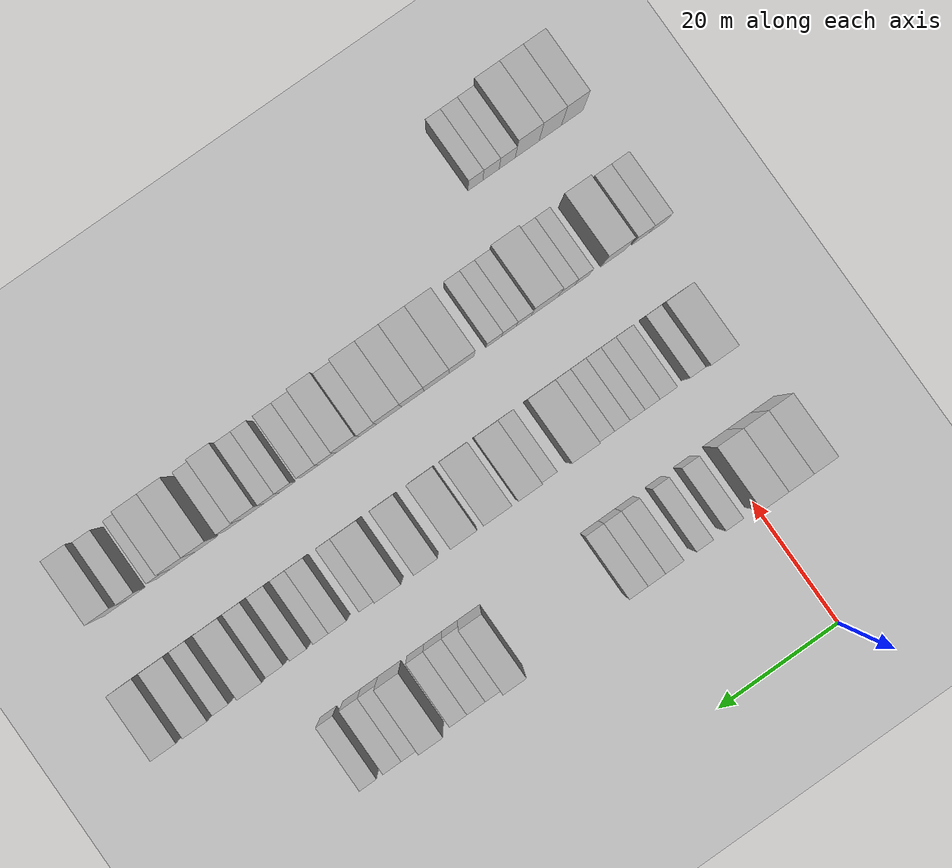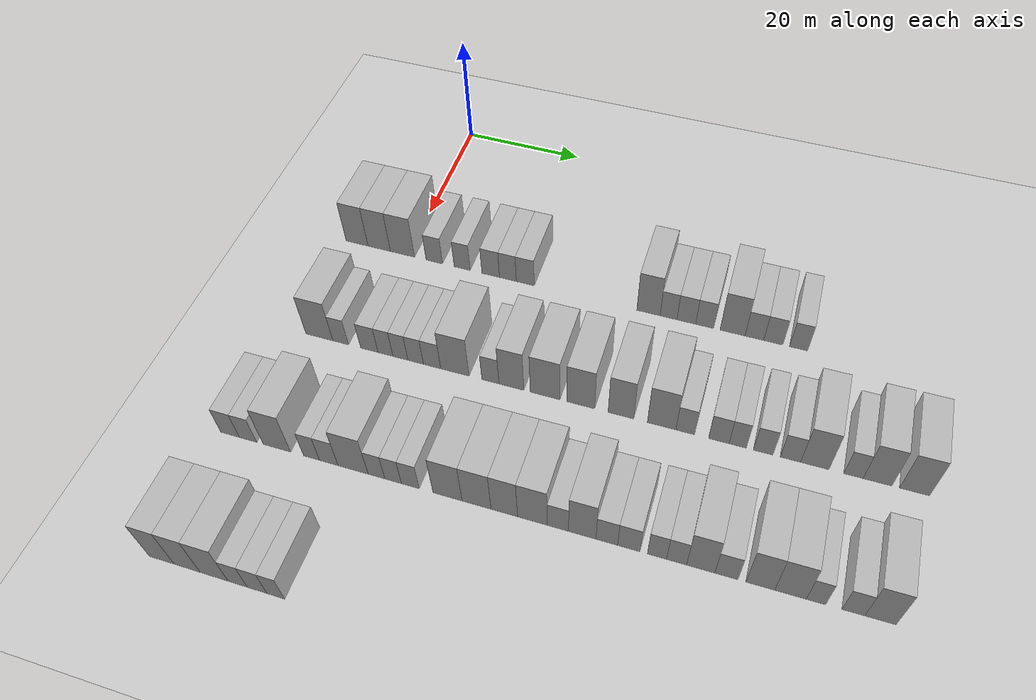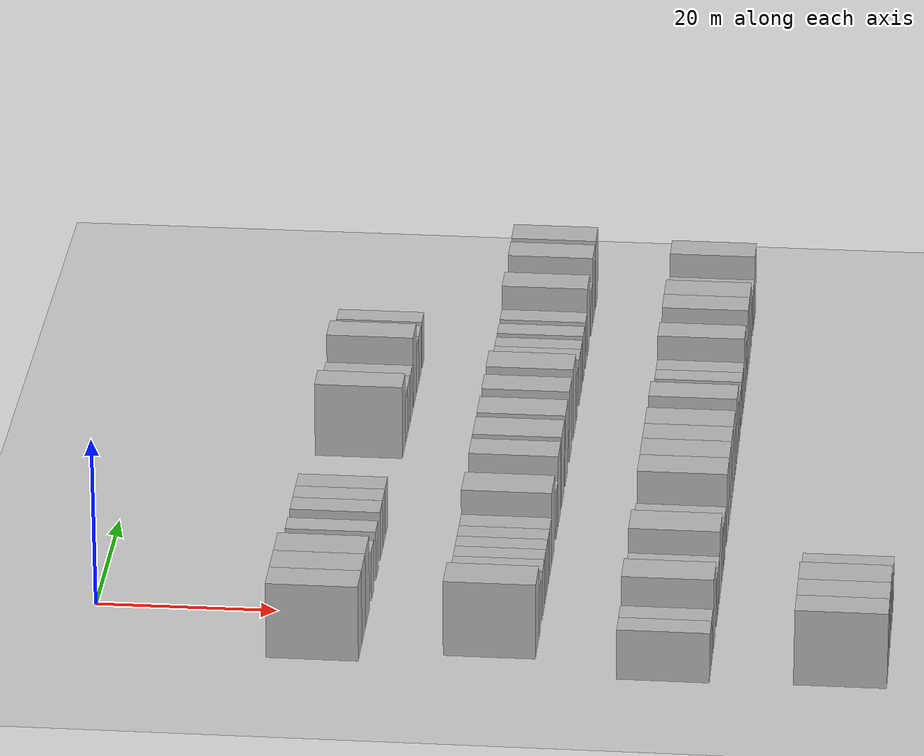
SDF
<sdf version="1.6">
 <world name="default">
  <include><name>ground_plane_1</name><uri>model://HANNAS_ground_plane</uri></include>
  <model name="building_80">
   <static>1</static>
   <pose>25.0000 -8.8628 0 0.000000 0.000000 0.000000</pose>
   <link name="link">
    <pose>0 0 4.50 0 0 0</pose>
    <collision name="collision"><geometry><box><size>10.0000 3.8810 9.0000</size></box></geometry></collision>
    <visual name="visual">
     <cast_shadows>0</cast_shadows>
     <geometry><box><size>10.0000 3.8810 9.0000</size></box></geometry>
     <material>
      <script>
       <uri>model://HANNAS_wall/materials/scripts</uri>
       <uri>model://HANNAS_wall/materials/textures</uri>
       <name>vrc/HANNAS_wall</name>
      </script>
     </material>
    </visual>
   </link>
  </model>
  <model name="building_81">
   <static>1</static>
   <pose>25.0000 -4.9381 0 0.000000 0.000000 0.000000</pose>
   <link name="link">
    <pose>0 0 4.50 0 0 0</pose>
    <collision name="collision"><geometry><box><size>10.0000 3.9684 9.0000</size></box></geometry></collision>
    <visual name="visual">
     <cast_shadows>0</cast_shadows>
     <geometry><box><size>10.0000 3.9684 9.0000</size></box></geometry>
     <material>
      <script>
       <uri>model://HANNAS_wall/materials/scripts</uri>
       <uri>model://HANNAS_wall/materials/textures</uri>
       <name>vrc/HANNAS_wall</name>
      </script>
     </material>
    </visual>
   </link>
  </model>
  <model name="building_82">
   <static>1</static>
   <pose>25.0000 -0.8467 0 0.000000 0.000000 0.000000</pose>
   <link name="link">
    <pose>0 0 4.50 0 0 0</pose>
    <collision name="collision"><geometry><box><size>10.0000 4.2144 9.0000</size></box></geometry></collision>
    <visual name="visual">
     <cast_shadows>0</cast_shadows>
     <geometry><box><size>10.0000 4.2144 9.0000</size></box></geometry>
     <material>
      <script>
       <uri>model://HANNAS_wall/materials/scripts</uri>
       <uri>model://HANNAS_wall/materials/textures</uri>
       <name>vrc/HANNAS_wall</name>
      </script>
     </material>
    </visual>
   </link>
  </model>
  <model name="building_83">
   <static>1</static>
   <pose>25.0000 4.6830 0 0.000000 0.000000 0.000000</pose>
   <link name="link">
    <pose>0 0 3.00 0 0 0</pose>
    <collision name="collision"><geometry><box><size>10.0000 2.8449 6.0000</size></box></geometry></collision>
    <visual name="visual">
     <cast_shadows>0</cast_shadows>
     <geometry><box><size>10.0000 2.8449 6.0000</size></box></geometry>
     <material>
      <script>
       <uri>model://HANNAS_wall/materials/scripts</uri>
       <uri>model://HANNAS_wall/materials/textures</uri>
       <name>vrc/HANNAS_wall</name>
      </script>
     </material>
    </visual>
   </link>
  </model>
  <model name="building_84">
   <static>1</static>
   <pose>25.0000 9.4746 0 0.000000 0.000000 0.000000</pose>
   <link name="link">
    <pose>0 0 3.00 0 0 0</pose>
    <collision name="collision"><geometry><box><size>10.0000 2.7384 6.0000</size></box></geometry></collision>
    <visual name="visual">
     <cast_shadows>0</cast_shadows>
     <geometry><box><size>10.0000 2.7384 6.0000</size></box></geometry>
     <material>
      <script>
       <uri>model://HANNAS_wall/materials/scripts</uri>
       <uri>model://HANNAS_wall/materials/textures</uri>
       <name>vrc/HANNAS_wall</name>
      </script>
     </material>
    </visual>
   </link>
  </model>
  <model name="building_85">
   <static>1</static>
   <pose>25.0000 14.3196 0 0.000000 0.000000 0.000000</pose>
   <link name="link">
    <pose>0 0 3.00 0 0 0</pose>
    <collision name="collision"><geometry><box><size>10.0000 2.9516 6.0000</size></box></geometry></collision>
    <visual name="visual">
     <cast_shadows>0</cast_shadows>
     <geometry><box><size>10.0000 2.9516 6.0000</size></box></geometry>
     <material>
      <script>
       <uri>model://HANNAS_wall/materials/scripts</uri>
       <uri>model://HANNAS_wall/materials/textures</uri>
       <name>vrc/HANNAS_wall</name>
      </script>
     </material>
    </visual>
   </link>
  </model>
  <model name="building_86">
   <static>1</static>
   <pose>25.0000 17.2045 0 0.000000 0.000000 0.000000</pose>
   <link name="link">
    <pose>0 0 3.00 0 0 0</pose>
    <collision name="collision"><geometry><box><size>10.0000 2.8181 6.0000</size></box></geometry></collision>
    <visual name="visual">
     <cast_shadows>0</cast_shadows>
     <geometry><box><size>10.0000 2.8181 6.0000</size></box></geometry>
     <material>
      <script>
       <uri>model://HANNAS_wall/materials/scripts</uri>
       <uri>model://HANNAS_wall/materials/textures</uri>
       <name>vrc/HANNAS_wall</name>
      </script>
     </material>
    </visual>
   </link>
  </model>
  <model name="building_87">
   <static>1</static>
   <pose>25.0000 20.1125 0 0.000000 0.000000 0.000000</pose>
   <link name="link">
    <pose>0 0 3.00 0 0 0</pose>
    <collision name="collision"><geometry><box><size>10.0000 2.9980 6.0000</size></box></geometry></collision>
    <visual name="visual">
     <cast_shadows>0</cast_shadows>
     <geometry><box><size>10.0000 2.9980 6.0000</size></box></geometry>
     <material>
      <script>
       <uri>model://HANNAS_wall/materials/scripts</uri>
       <uri>model://HANNAS_wall/materials/textures</uri>
       <name>vrc/HANNAS_wall</name>
      </script>
     </material>
    </visual>
   </link>
  </model>
  <model name="building_88">
   <static>1</static>
   <pose>25.0000 40.1347 0 0.000000 0.000000 0.000000</pose>
   <link name="link">
    <pose>0 0 4.50 0 0 0</pose>
    <collision name="collision"><geometry><box><size>10.0000 3.6821 9.0000</size></box></geometry></collision>
    <visual name="visual">
     <cast_shadows>0</cast_shadows>
     <geometry><box><size>10.0000 3.6821 9.0000</size></box></geometry>
     <material>
      <script>
       <uri>model://HANNAS_wall/materials/scripts</uri>
       <uri>model://HANNAS_wall/materials/textures</uri>
       <name>vrc/HANNAS_wall</name>
      </script>
     </material>
    </visual>
   </link>
  </model>
  <model name="building_89">
   <static>1</static>
   <pose>25.0000 43.3047 0 0.000000 0.000000 0.000000</pose>
   <link name="link">
    <pose>0 0 3.00 0 0 0</pose>
    <collision name="collision"><geometry><box><size>10.0000 2.6580 6.0000</size></box></geometry></collision>
    <visual name="visual">
     <cast_shadows>0</cast_shadows>
     <geometry><box><size>10.0000 2.6580 6.0000</size></box></geometry>
     <material>
      <script>
       <uri>model://HANNAS_wall/materials/scripts</uri>
       <uri>model://HANNAS_wall/materials/textures</uri>
       <name>vrc/HANNAS_wall</name>
      </script>
     </material>
    </visual>
   </link>
  </model>
  <model name="building_90">
   <static>1</static>
   <pose>25.0000 46.0963 0 0.000000 0.000000 0.000000</pose>
   <link name="link">
    <pose>0 0 3.00 0 0 0</pose>
    <collision name="collision"><geometry><box><size>10.0000 2.9250 6.0000</size></box></geometry></collision>
    <visual name="visual">
     <cast_shadows>0</cast_shadows>
     <geometry><box><size>10.0000 2.9250 6.0000</size></box></geometry>
     <material>
      <script>
       <uri>model://HANNAS_wall/materials/scripts</uri>
       <uri>model://HANNAS_wall/materials/textures</uri>
       <name>vrc/HANNAS_wall</name>
      </script>
     </material>
    </visual>
   </link>
  </model>
  <model name="building_91">
   <static>1</static>
   <pose>25.0000 48.9484 0 0.000000 0.000000 0.000000</pose>
   <link name="link">
    <pose>0 0 3.00 0 0 0</pose>
    <collision name="collision"><geometry><box><size>10.0000 2.7791 6.0000</size></box></geometry></collision>
    <visual name="visual">
     <cast_shadows>0</cast_shadows>
     <geometry><box><size>10.0000 2.7791 6.0000</size></box></geometry>
     <material>
      <script>
       <uri>model://HANNAS_wall/materials/scripts</uri>
       <uri>model://HANNAS_wall/materials/textures</uri>
       <name>vrc/HANNAS_wall</name>
      </script>
     </material>
    </visual>
   </link>
  </model>
  <model name="building_92">
   <static>1</static>
   <pose>25.0000 53.2542 0 0.000000 0.000000 0.000000</pose>
   <link name="link">
    <pose>0 0 4.50 0 0 0</pose>
    <collision name="collision"><geometry><box><size>10.0000 3.8325 9.0000</size></box></geometry></collision>
    <visual name="visual">
     <cast_shadows>0</cast_shadows>
     <geometry><box><size>10.0000 3.8325 9.0000</size></box></geometry>
     <material>
      <script>
       <uri>model://HANNAS_wall/materials/scripts</uri>
       <uri>model://HANNAS_wall/materials/textures</uri>
       <name>vrc/HANNAS_wall</name>
      </script>
     </material>
    </visual>
   </link>
  </model>
  <model name="building_93">
   <static>1</static>
   <pose>25.0000 56.5913 0 0.000000 0.000000 0.000000</pose>
   <link name="link">
    <pose>0 0 3.00 0 0 0</pose>
    <collision name="collision"><geometry><box><size>10.0000 2.8417 6.0000</size></box></geometry></collision>
    <visual name="visual">
     <cast_shadows>0</cast_shadows>
     <geometry><box><size>10.0000 2.8417 6.0000</size></box></geometry>
     <material>
      <script>
       <uri>model://HANNAS_wall/materials/scripts</uri>
       <uri>model://HANNAS_wall/materials/textures</uri>
       <name>vrc/HANNAS_wall</name>
      </script>
     </material>
    </visual>
   </link>
  </model>
  <model name="building_94">
   <static>1</static>
   <pose>25.0000 59.4693 0 0.000000 0.000000 0.000000</pose>
   <link name="link">
    <pose>0 0 3.00 0 0 0</pose>
    <collision name="collision"><geometry><box><size>10.0000 2.9143 6.0000</size></box></geometry></collision>
    <visual name="visual">
     <cast_shadows>0</cast_shadows>
     <geometry><box><size>10.0000 2.9143 6.0000</size></box></geometry>
     <material>
      <script>
       <uri>model://HANNAS_wall/materials/scripts</uri>
       <uri>model://HANNAS_wall/materials/textures</uri>
       <name>vrc/HANNAS_wall</name>
      </script>
     </material>
    </visual>
   </link>
  </model>
  <model name="building_95">
   <static>1</static>
   <pose>25.0000 63.2848 0 0.000000 0.000000 0.000000</pose>
   <link name="link">
    <pose>0 0 3.00 0 0 0</pose>
    <collision name="collision"><geometry><box><size>10.0000 2.7167 6.0000</size></box></geometry></collision>
    <visual name="visual">
     <cast_shadows>0</cast_shadows>
     <geometry><box><size>10.0000 2.7167 6.0000</size></box></geometry>
     <material>
      <script>
       <uri>model://HANNAS_wall/materials/scripts</uri>
       <uri>model://HANNAS_wall/materials/textures</uri>
       <name>vrc/HANNAS_wall</name>
      </script>
     </material>
    </visual>
   </link>
  </model>
  <model name="building_240">
   <static>1</static>
   <pose>44.0000 -6.4663 0 0.000000 0.000000 0.000000</pose>
   <link name="link">
    <pose>0 0 4.50 0 0 0</pose>
    <collision name="collision"><geometry><box><size>10.0000 4.4723 9.0000</size></box></geometry></collision>
    <visual name="visual">
     <cast_shadows>0</cast_shadows>
     <geometry><box><size>10.0000 4.4723 9.0000</size></box></geometry>
     <material>
      <script>
       <uri>model://HANNAS_wall/materials/scripts</uri>
       <uri>model://HANNAS_wall/materials/textures</uri>
       <name>vrc/HANNAS_wall</name>
      </script>
     </material>
    </visual>
   </link>
  </model>
  <model name="building_241">
   <static>1</static>
   <pose>44.0000 -2.9451 0 0.000000 0.000000 0.000000</pose>
   <link name="link">
    <pose>0 0 3.00 0 0 0</pose>
    <collision name="collision"><geometry><box><size>10.0000 2.5700 6.0000</size></box></geometry></collision>
    <visual name="visual">
     <cast_shadows>0</cast_shadows>
     <geometry><box><size>10.0000 2.5700 6.0000</size></box></geometry>
     <material>
      <script>
       <uri>model://HANNAS_wall/materials/scripts</uri>
       <uri>model://HANNAS_wall/materials/textures</uri>
       <name>vrc/HANNAS_wall</name>
      </script>
     </material>
    </visual>
   </link>
  </model>
  <model name="building_242">
   <static>1</static>
   <pose>44.0000 1.7501 0 0.000000 0.000000 0.000000</pose>
   <link name="link">
    <pose>0 0 3.00 0 0 0</pose>
    <collision name="collision"><geometry><box><size>10.0000 2.8204 6.0000</size></box></geometry></collision>
    <visual name="visual">
     <cast_shadows>0</cast_shadows>
     <geometry><box><size>10.0000 2.8204 6.0000</size></box></geometry>
     <material>
      <script>
       <uri>model://HANNAS_wall/materials/scripts</uri>
       <uri>model://HANNAS_wall/materials/textures</uri>
       <name>vrc/HANNAS_wall</name>
      </script>
     </material>
    </visual>
   </link>
  </model>
  <model name="building_243">
   <static>1</static>
   <pose>44.0000 4.3625 0 0.000000 0.000000 0.000000</pose>
   <link name="link">
    <pose>0 0 3.00 0 0 0</pose>
    <collision name="collision"><geometry><box><size>10.0000 2.4045 6.0000</size></box></geometry></collision>
    <visual name="visual">
     <cast_shadows>0</cast_shadows>
     <geometry><box><size>10.0000 2.4045 6.0000</size></box></geometry>
     <material>
      <script>
       <uri>model://HANNAS_wall/materials/scripts</uri>
       <uri>model://HANNAS_wall/materials/textures</uri>
       <name>vrc/HANNAS_wall</name>
      </script>
     </material>
    </visual>
   </link>
  </model>
  <model name="building_244">
   <static>1</static>
   <pose>44.0000 6.7687 0 0.000000 0.000000 0.000000</pose>
   <link name="link">
    <pose>0 0 3.00 0 0 0</pose>
    <collision name="collision"><geometry><box><size>10.0000 2.4079 6.0000</size></box></geometry></collision>
    <visual name="visual">
     <cast_shadows>0</cast_shadows>
     <geometry><box><size>10.0000 2.4079 6.0000</size></box></geometry>
     <material>
      <script>
       <uri>model://HANNAS_wall/materials/scripts</uri>
       <uri>model://HANNAS_wall/materials/textures</uri>
       <name>vrc/HANNAS_wall</name>
      </script>
     </material>
    </visual>
   </link>
  </model>
  <model name="building_245">
   <static>1</static>
   <pose>44.0000 9.2122 0 0.000000 0.000000 0.000000</pose>
   <link name="link">
    <pose>0 0 3.00 0 0 0</pose>
    <collision name="collision"><geometry><box><size>10.0000 2.4792 6.0000</size></box></geometry></collision>
    <visual name="visual">
     <cast_shadows>0</cast_shadows>
     <geometry><box><size>10.0000 2.4792 6.0000</size></box></geometry>
     <material>
      <script>
       <uri>model://HANNAS_wall/materials/scripts</uri>
       <uri>model://HANNAS_wall/materials/textures</uri>
       <name>vrc/HANNAS_wall</name>
      </script>
     </material>
    </visual>
   </link>
  </model>
  <model name="building_246">
   <static>1</static>
   <pose>44.0000 11.8305 0 0.000000 0.000000 0.000000</pose>
   <link name="link">
    <pose>0 0 3.00 0 0 0</pose>
    <collision name="collision"><geometry><box><size>10.0000 2.7574 6.0000</size></box></geometry></collision>
    <visual name="visual">
     <cast_shadows>0</cast_shadows>
     <geometry><box><size>10.0000 2.7574 6.0000</size></box></geometry>
     <material>
      <script>
       <uri>model://HANNAS_wall/materials/scripts</uri>
       <uri>model://HANNAS_wall/materials/textures</uri>
       <name>vrc/HANNAS_wall</name>
      </script>
     </material>
    </visual>
   </link>
  </model>
  <model name="building_247">
   <static>1</static>
   <pose>44.0000 15.4380 0 0.000000 0.000000 0.000000</pose>
   <link name="link">
    <pose>0 0 4.50 0 0 0</pose>
    <collision name="collision"><geometry><box><size>10.0000 4.4575 9.0000</size></box></geometry></collision>
    <visual name="visual">
     <cast_shadows>0</cast_shadows>
     <geometry><box><size>10.0000 4.4575 9.0000</size></box></geometry>
     <material>
      <script>
       <uri>model://HANNAS_wall/materials/scripts</uri>
       <uri>model://HANNAS_wall/materials/textures</uri>
       <name>vrc/HANNAS_wall</name>
      </script>
     </material>
    </visual>
   </link>
  </model>
  <model name="building_248">
   <static>1</static>
   <pose>44.0000 20.9853 0 0.000000 0.000000 0.000000</pose>
   <link name="link">
    <pose>0 0 3.00 0 0 0</pose>
    <collision name="collision"><geometry><box><size>10.0000 2.6373 6.0000</size></box></geometry></collision>
    <visual name="visual">
     <cast_shadows>0</cast_shadows>
     <geometry><box><size>10.0000 2.6373 6.0000</size></box></geometry>
     <material>
      <script>
       <uri>model://HANNAS_wall/materials/scripts</uri>
       <uri>model://HANNAS_wall/materials/textures</uri>
       <name>vrc/HANNAS_wall</name>
      </script>
     </material>
    </visual>
   </link>
  </model>
  <model name="building_249">
   <static>1</static>
   <pose>44.0000 24.2152 0 0.000000 0.000000 0.000000</pose>
   <link name="link">
    <pose>0 0 4.50 0 0 0</pose>
    <collision name="collision"><geometry><box><size>10.0000 3.8224 9.0000</size></box></geometry></collision>
    <visual name="visual">
     <cast_shadows>0</cast_shadows>
     <geometry><box><size>10.0000 3.8224 9.0000</size></box></geometry>
     <material>
      <script>
       <uri>model://HANNAS_wall/materials/scripts</uri>
       <uri>model://HANNAS_wall/materials/textures</uri>
       <name>vrc/HANNAS_wall</name>
      </script>
     </material>
    </visual>
   </link>
  </model>
  <model name="building_250">
   <static>1</static>
   <pose>44.0000 29.3676 0 0.000000 0.000000 0.000000</pose>
   <link name="link">
    <pose>0 0 4.50 0 0 0</pose>
    <collision name="collision"><geometry><box><size>10.0000 4.4823 9.0000</size></box></geometry></collision>
    <visual name="visual">
     <cast_shadows>0</cast_shadows>
     <geometry><box><size>10.0000 4.4823 9.0000</size></box></geometry>
     <material>
      <script>
       <uri>model://HANNAS_wall/materials/scripts</uri>
       <uri>model://HANNAS_wall/materials/textures</uri>
       <name>vrc/HANNAS_wall</name>
      </script>
     </material>
    </visual>
   </link>
  </model>
  <model name="building_251">
   <static>1</static>
   <pose>44.0000 34.7093 0 0.000000 0.000000 0.000000</pose>
   <link name="link">
    <pose>0 0 4.50 0 0 0</pose>
    <collision name="collision"><geometry><box><size>10.0000 4.2011 9.0000</size></box></geometry></collision>
    <visual name="visual">
     <cast_shadows>0</cast_shadows>
     <geometry><box><size>10.0000 4.2011 9.0000</size></box></geometry>
     <material>
      <script>
       <uri>model://HANNAS_wall/materials/scripts</uri>
       <uri>model://HANNAS_wall/materials/textures</uri>
       <name>vrc/HANNAS_wall</name>
      </script>
     </material>
    </visual>
   </link>
  </model>
  <model name="building_252">
   <static>1</static>
   <pose>44.0000 40.6884 0 0.000000 0.000000 0.000000</pose>
   <link name="link">
    <pose>0 0 4.50 0 0 0</pose>
    <collision name="collision"><geometry><box><size>10.0000 3.7571 9.0000</size></box></geometry></collision>
    <visual name="visual">
     <cast_shadows>0</cast_shadows>
     <geometry><box><size>10.0000 3.7571 9.0000</size></box></geometry>
     <material>
      <script>
       <uri>model://HANNAS_wall/materials/scripts</uri>
       <uri>model://HANNAS_wall/materials/textures</uri>
       <name>vrc/HANNAS_wall</name>
      </script>
     </material>
    </visual>
   </link>
  </model>
  <model name="building_253">
   <static>1</static>
   <pose>44.0000 46.6342 0 0.000000 0.000000 0.000000</pose>
   <link name="link">
    <pose>0 0 4.50 0 0 0</pose>
    <collision name="collision"><geometry><box><size>10.0000 4.1346 9.0000</size></box></geometry></collision>
    <visual name="visual">
     <cast_shadows>0</cast_shadows>
     <geometry><box><size>10.0000 4.1346 9.0000</size></box></geometry>
     <material>
      <script>
       <uri>model://HANNAS_wall/materials/scripts</uri>
       <uri>model://HANNAS_wall/materials/textures</uri>
       <name>vrc/HANNAS_wall</name>
      </script>
     </material>
    </visual>
   </link>
  </model>
  <model name="building_254">
   <static>1</static>
   <pose>44.0000 50.0399 0 0.000000 0.000000 0.000000</pose>
   <link name="link">
    <pose>0 0 3.00 0 0 0</pose>
    <collision name="collision"><geometry><box><size>10.0000 2.6768 6.0000</size></box></geometry></collision>
    <visual name="visual">
     <cast_shadows>0</cast_shadows>
     <geometry><box><size>10.0000 2.6768 6.0000</size></box></geometry>
     <material>
      <script>
       <uri>model://HANNAS_wall/materials/scripts</uri>
       <uri>model://HANNAS_wall/materials/textures</uri>
       <name>vrc/HANNAS_wall</name>
      </script>
     </material>
    </visual>
   </link>
  </model>
  <model name="building_255">
   <static>1</static>
   <pose>44.0000 54.8276 0 0.000000 0.000000 0.000000</pose>
   <link name="link">
    <pose>0 0 3.00 0 0 0</pose>
    <collision name="collision"><geometry><box><size>10.0000 2.8987 6.0000</size></box></geometry></collision>
    <visual name="visual">
     <cast_shadows>0</cast_shadows>
     <geometry><box><size>10.0000 2.8987 6.0000</size></box></geometry>
     <material>
      <script>
       <uri>model://HANNAS_wall/materials/scripts</uri>
       <uri>model://HANNAS_wall/materials/textures</uri>
       <name>vrc/HANNAS_wall</name>
      </script>
     </material>
    </visual>
   </link>
  </model>
  <model name="building_256">
   <static>1</static>
   <pose>44.0000 57.4905 0 0.000000 0.000000 0.000000</pose>
   <link name="link">
    <pose>0 0 3.00 0 0 0</pose>
    <collision name="collision"><geometry><box><size>10.0000 2.4271 6.0000</size></box></geometry></collision>
    <visual name="visual">
     <cast_shadows>0</cast_shadows>
     <geometry><box><size>10.0000 2.4271 6.0000</size></box></geometry>
     <material>
      <script>
       <uri>model://HANNAS_wall/materials/scripts</uri>
       <uri>model://HANNAS_wall/materials/textures</uri>
       <name>vrc/HANNAS_wall</name>
      </script>
     </material>
    </visual>
   </link>
  </model>
  <model name="building_257">
   <static>1</static>
   <pose>44.0000 61.0678 0 0.000000 0.000000 0.000000</pose>
   <link name="link">
    <pose>0 0 3.00 0 0 0</pose>
    <collision name="collision"><geometry><box><size>10.0000 2.7275 6.0000</size></box></geometry></collision>
    <visual name="visual">
     <cast_shadows>0</cast_shadows>
     <geometry><box><size>10.0000 2.7275 6.0000</size></box></geometry>
     <material>
      <script>
       <uri>model://HANNAS_wall/materials/scripts</uri>
       <uri>model://HANNAS_wall/materials/textures</uri>
       <name>vrc/HANNAS_wall</name>
      </script>
     </material>
    </visual>
   </link>
  </model>
  <model name="building_258">
   <static>1</static>
   <pose>44.0000 64.8363 0 0.000000 0.000000 0.000000</pose>
   <link name="link">
    <pose>0 0 3.00 0 0 0</pose>
    <collision name="collision"><geometry><box><size>10.0000 2.8095 6.0000</size></box></geometry></collision>
    <visual name="visual">
     <cast_shadows>0</cast_shadows>
     <geometry><box><size>10.0000 2.8095 6.0000</size></box></geometry>
     <material>
      <script>
       <uri>model://HANNAS_wall/materials/scripts</uri>
       <uri>model://HANNAS_wall/materials/textures</uri>
       <name>vrc/HANNAS_wall</name>
      </script>
     </material>
    </visual>
   </link>
  </model>
  <model name="building_259">
   <static>1</static>
   <pose>44.0000 68.1875 0 0.000000 0.000000 0.000000</pose>
   <link name="link">
    <pose>0 0 4.50 0 0 0</pose>
    <collision name="collision"><geometry><box><size>10.0000 3.8930 9.0000</size></box></geometry></collision>
    <visual name="visual">
     <cast_shadows>0</cast_shadows>
     <geometry><box><size>10.0000 3.8930 9.0000</size></box></geometry>
     <material>
      <script>
       <uri>model://HANNAS_wall/materials/scripts</uri>
       <uri>model://HANNAS_wall/materials/textures</uri>
       <name>vrc/HANNAS_wall</name>
      </script>
     </material>
    </visual>
   </link>
  </model>
  <model name="building_260">
   <static>1</static>
   <pose>44.0000 73.4386 0 0.000000 0.000000 0.000000</pose>
   <link name="link">
    <pose>0 0 3.00 0 0 0</pose>
    <collision name="collision"><geometry><box><size>10.0000 2.6091 6.0000</size></box></geometry></collision>
    <visual name="visual">
     <cast_shadows>0</cast_shadows>
     <geometry><box><size>10.0000 2.6091 6.0000</size></box></geometry>
     <material>
      <script>
       <uri>model://HANNAS_wall/materials/scripts</uri>
       <uri>model://HANNAS_wall/materials/textures</uri>
       <name>vrc/HANNAS_wall</name>
      </script>
     </material>
    </visual>
   </link>
  </model>
  <model name="building_261">
   <static>1</static>
   <pose>44.0000 76.6648 0 0.000000 0.000000 0.000000</pose>
   <link name="link">
    <pose>0 0 4.50 0 0 0</pose>
    <collision name="collision"><geometry><box><size>10.0000 3.8433 9.0000</size></box></geometry></collision>
    <visual name="visual">
     <cast_shadows>0</cast_shadows>
     <geometry><box><size>10.0000 3.8433 9.0000</size></box></geometry>
     <material>
      <script>
       <uri>model://HANNAS_wall/materials/scripts</uri>
       <uri>model://HANNAS_wall/materials/textures</uri>
       <name>vrc/HANNAS_wall</name>
      </script>
     </material>
    </visual>
   </link>
  </model>
  <model name="building_262">
   <static>1</static>
   <pose>44.0000 81.5735 0 0.000000 0.000000 0.000000</pose>
   <link name="link">
    <pose>0 0 4.50 0 0 0</pose>
    <collision name="collision"><geometry><box><size>10.0000 3.9742 9.0000</size></box></geometry></collision>
    <visual name="visual">
     <cast_shadows>0</cast_shadows>
     <geometry><box><size>10.0000 3.9742 9.0000</size></box></geometry>
     <material>
      <script>
       <uri>model://HANNAS_wall/materials/scripts</uri>
       <uri>model://HANNAS_wall/materials/textures</uri>
       <name>vrc/HANNAS_wall</name>
      </script>
     </material>
    </visual>
   </link>
  </model>
  <model name="building_421">
   <static>1</static>
   <pose>63.0000 -11.0564 0 0.000000 0.000000 0.000000</pose>
   <link name="link">
    <pose>0 0 3.00 0 0 0</pose>
    <collision name="collision"><geometry><box><size>10.0000 2.9020 6.0000</size></box></geometry></collision>
    <visual name="visual">
     <cast_shadows>0</cast_shadows>
     <geometry><box><size>10.0000 2.9020 6.0000</size></box></geometry>
     <material>
      <script>
       <uri>model://HANNAS_wall/materials/scripts</uri>
       <uri>model://HANNAS_wall/materials/textures</uri>
       <name>vrc/HANNAS_wall</name>
      </script>
     </material>
    </visual>
   </link>
  </model>
  <model name="building_422">
   <static>1</static>
   <pose>63.0000 -8.2516 0 0.000000 0.000000 0.000000</pose>
   <link name="link">
    <pose>0 0 3.00 0 0 0</pose>
    <collision name="collision"><geometry><box><size>10.0000 2.7077 6.0000</size></box></geometry></collision>
    <visual name="visual">
     <cast_shadows>0</cast_shadows>
     <geometry><box><size>10.0000 2.7077 6.0000</size></box></geometry>
     <material>
      <script>
       <uri>model://HANNAS_wall/materials/scripts</uri>
       <uri>model://HANNAS_wall/materials/textures</uri>
       <name>vrc/HANNAS_wall</name>
      </script>
     </material>
    </visual>
   </link>
  </model>
  <model name="building_423">
   <static>1</static>
   <pose>63.0000 -3.7845 0 0.000000 0.000000 0.000000</pose>
   <link name="link">
    <pose>0 0 4.50 0 0 0</pose>
    <collision name="collision"><geometry><box><size>10.0000 4.2264 9.0000</size></box></geometry></collision>
    <visual name="visual">
     <cast_shadows>0</cast_shadows>
     <geometry><box><size>10.0000 4.2264 9.0000</size></box></geometry>
     <material>
      <script>
       <uri>model://HANNAS_wall/materials/scripts</uri>
       <uri>model://HANNAS_wall/materials/textures</uri>
       <name>vrc/HANNAS_wall</name>
      </script>
     </material>
    </visual>
   </link>
  </model>
  <model name="building_424">
   <static>1</static>
   <pose>63.0000 1.5301 0 0.000000 0.000000 0.000000</pose>
   <link name="link">
    <pose>0 0 3.00 0 0 0</pose>
    <collision name="collision"><geometry><box><size>10.0000 2.4029 6.0000</size></box></geometry></collision>
    <visual name="visual">
     <cast_shadows>0</cast_shadows>
     <geometry><box><size>10.0000 2.4029 6.0000</size></box></geometry>
     <material>
      <script>
       <uri>model://HANNAS_wall/materials/scripts</uri>
       <uri>model://HANNAS_wall/materials/textures</uri>
       <name>vrc/HANNAS_wall</name>
      </script>
     </material>
    </visual>
   </link>
  </model>
  <model name="building_425">
   <static>1</static>
   <pose>63.0000 4.1289 0 0.000000 0.000000 0.000000</pose>
   <link name="link">
    <pose>0 0 3.00 0 0 0</pose>
    <collision name="collision"><geometry><box><size>10.0000 2.7946 6.0000</size></box></geometry></collision>
    <visual name="visual">
     <cast_shadows>0</cast_shadows>
     <geometry><box><size>10.0000 2.7946 6.0000</size></box></geometry>
     <material>
      <script>
       <uri>model://HANNAS_wall/materials/scripts</uri>
       <uri>model://HANNAS_wall/materials/textures</uri>
       <name>vrc/HANNAS_wall</name>
      </script>
     </material>
    </visual>
   </link>
  </model>
  <model name="building_426">
   <static>1</static>
   <pose>63.0000 7.7717 0 0.000000 0.000000 0.000000</pose>
   <link name="link">
    <pose>0 0 4.50 0 0 0</pose>
    <collision name="collision"><geometry><box><size>10.0000 4.4909 9.0000</size></box></geometry></collision>
    <visual name="visual">
     <cast_shadows>0</cast_shadows>
     <geometry><box><size>10.0000 4.4909 9.0000</size></box></geometry>
     <material>
      <script>
       <uri>model://HANNAS_wall/materials/scripts</uri>
       <uri>model://HANNAS_wall/materials/textures</uri>
       <name>vrc/HANNAS_wall</name>
      </script>
     </material>
    </visual>
   </link>
  </model>
  <model name="building_427">
   <static>1</static>
   <pose>63.0000 11.2611 0 0.000000 0.000000 0.000000</pose>
   <link name="link">
    <pose>0 0 3.00 0 0 0</pose>
    <collision name="collision"><geometry><box><size>10.0000 2.4879 6.0000</size></box></geometry></collision>
    <visual name="visual">
     <cast_shadows>0</cast_shadows>
     <geometry><box><size>10.0000 2.4879 6.0000</size></box></geometry>
     <material>
      <script>
       <uri>model://HANNAS_wall/materials/scripts</uri>
       <uri>model://HANNAS_wall/materials/textures</uri>
       <name>vrc/HANNAS_wall</name>
      </script>
     </material>
    </visual>
   </link>
  </model>
  <model name="building_428">
   <static>1</static>
   <pose>63.0000 13.7171 0 0.000000 0.000000 0.000000</pose>
   <link name="link">
    <pose>0 0 3.00 0 0 0</pose>
    <collision name="collision"><geometry><box><size>10.0000 2.4240 6.0000</size></box></geometry></collision>
    <visual name="visual">
     <cast_shadows>0</cast_shadows>
     <geometry><box><size>10.0000 2.4240 6.0000</size></box></geometry>
     <material>
      <script>
       <uri>model://HANNAS_wall/materials/scripts</uri>
       <uri>model://HANNAS_wall/materials/textures</uri>
       <name>vrc/HANNAS_wall</name>
      </script>
     </material>
    </visual>
   </link>
  </model>
  <model name="building_429">
   <static>1</static>
   <pose>63.0000 16.2190 0 0.000000 0.000000 0.000000</pose>
   <link name="link">
    <pose>0 0 3.00 0 0 0</pose>
    <collision name="collision"><geometry><box><size>10.0000 2.5798 6.0000</size></box></geometry></collision>
    <visual name="visual">
     <cast_shadows>0</cast_shadows>
     <geometry><box><size>10.0000 2.5798 6.0000</size></box></geometry>
     <material>
      <script>
       <uri>model://HANNAS_wall/materials/scripts</uri>
       <uri>model://HANNAS_wall/materials/textures</uri>
       <name>vrc/HANNAS_wall</name>
      </script>
     </material>
    </visual>
   </link>
  </model>
  <model name="building_430">
   <static>1</static>
   <pose>63.0000 21.5932 0 0.000000 0.000000 0.000000</pose>
   <link name="link">
    <pose>0 0 4.50 0 0 0</pose>
    <collision name="collision"><geometry><box><size>10.0000 4.1685 9.0000</size></box></geometry></collision>
    <visual name="visual">
     <cast_shadows>0</cast_shadows>
     <geometry><box><size>10.0000 4.1685 9.0000</size></box></geometry>
     <material>
      <script>
       <uri>model://HANNAS_wall/materials/scripts</uri>
       <uri>model://HANNAS_wall/materials/textures</uri>
       <name>vrc/HANNAS_wall</name>
      </script>
     </material>
    </visual>
   </link>
  </model>
  <model name="building_431">
   <static>1</static>
   <pose>63.0000 25.7359 0 0.000000 0.000000 0.000000</pose>
   <link name="link">
    <pose>0 0 4.50 0 0 0</pose>
    <collision name="collision"><geometry><box><size>10.0000 4.1170 9.0000</size></box></geometry></collision>
    <visual name="visual">
     <cast_shadows>0</cast_shadows>
     <geometry><box><size>10.0000 4.1170 9.0000</size></box></geometry>
     <material>
      <script>
       <uri>model://HANNAS_wall/materials/scripts</uri>
       <uri>model://HANNAS_wall/materials/textures</uri>
       <name>vrc/HANNAS_wall</name>
      </script>
     </material>
    </visual>
   </link>
  </model>
  <model name="building_432">
   <static>1</static>
   <pose>63.0000 29.6585 0 0.000000 0.000000 0.000000</pose>
   <link name="link">
    <pose>0 0 4.50 0 0 0</pose>
    <collision name="collision"><geometry><box><size>10.0000 3.7280 9.0000</size></box></geometry></collision>
    <visual name="visual">
     <cast_shadows>0</cast_shadows>
     <geometry><box><size>10.0000 3.7280 9.0000</size></box></geometry>
     <material>
      <script>
       <uri>model://HANNAS_wall/materials/scripts</uri>
       <uri>model://HANNAS_wall/materials/textures</uri>
       <name>vrc/HANNAS_wall</name>
      </script>
     </material>
    </visual>
   </link>
  </model>
  <model name="building_433">
   <static>1</static>
   <pose>63.0000 33.5793 0 0.000000 0.000000 0.000000</pose>
   <link name="link">
    <pose>0 0 4.50 0 0 0</pose>
    <collision name="collision"><geometry><box><size>10.0000 4.1136 9.0000</size></box></geometry></collision>
    <visual name="visual">
     <cast_shadows>0</cast_shadows>
     <geometry><box><size>10.0000 4.1136 9.0000</size></box></geometry>
     <material>
      <script>
       <uri>model://HANNAS_wall/materials/scripts</uri>
       <uri>model://HANNAS_wall/materials/textures</uri>
       <name>vrc/HANNAS_wall</name>
      </script>
     </material>
    </visual>
   </link>
  </model>
  <model name="building_434">
   <static>1</static>
   <pose>63.0000 37.0902 0 0.000000 0.000000 0.000000</pose>
   <link name="link">
    <pose>0 0 3.00 0 0 0</pose>
    <collision name="collision"><geometry><box><size>10.0000 2.9083 6.0000</size></box></geometry></collision>
    <visual name="visual">
     <cast_shadows>0</cast_shadows>
     <geometry><box><size>10.0000 2.9083 6.0000</size></box></geometry>
     <material>
      <script>
       <uri>model://HANNAS_wall/materials/scripts</uri>
       <uri>model://HANNAS_wall/materials/textures</uri>
       <name>vrc/HANNAS_wall</name>
      </script>
     </material>
    </visual>
   </link>
  </model>
  <model name="building_435">
   <static>1</static>
   <pose>63.0000 40.4109 0 0.000000 0.000000 0.000000</pose>
   <link name="link">
    <pose>0 0 4.50 0 0 0</pose>
    <collision name="collision"><geometry><box><size>10.0000 3.7331 9.0000</size></box></geometry></collision>
    <visual name="visual">
     <cast_shadows>0</cast_shadows>
     <geometry><box><size>10.0000 3.7331 9.0000</size></box></geometry>
     <material>
      <script>
       <uri>model://HANNAS_wall/materials/scripts</uri>
       <uri>model://HANNAS_wall/materials/textures</uri>
       <name>vrc/HANNAS_wall</name>
      </script>
     </material>
    </visual>
   </link>
  </model>
  <model name="building_436">
   <static>1</static>
   <pose>63.0000 43.7369 0 0.000000 0.000000 0.000000</pose>
   <link name="link">
    <pose>0 0 3.00 0 0 0</pose>
    <collision name="collision"><geometry><box><size>10.0000 2.9188 6.0000</size></box></geometry></collision>
    <visual name="visual">
     <cast_shadows>0</cast_shadows>
     <geometry><box><size>10.0000 2.9188 6.0000</size></box></geometry>
     <material>
      <script>
       <uri>model://HANNAS_wall/materials/scripts</uri>
       <uri>model://HANNAS_wall/materials/textures</uri>
       <name>vrc/HANNAS_wall</name>
      </script>
     </material>
    </visual>
   </link>
  </model>
  <model name="building_437">
   <static>1</static>
   <pose>63.0000 46.6870 0 0.000000 0.000000 0.000000</pose>
   <link name="link">
    <pose>0 0 3.00 0 0 0</pose>
    <collision name="collision"><geometry><box><size>10.0000 2.9813 6.0000</size></box></geometry></collision>
    <visual name="visual">
     <cast_shadows>0</cast_shadows>
     <geometry><box><size>10.0000 2.9813 6.0000</size></box></geometry>
     <material>
      <script>
       <uri>model://HANNAS_wall/materials/scripts</uri>
       <uri>model://HANNAS_wall/materials/textures</uri>
       <name>vrc/HANNAS_wall</name>
      </script>
     </material>
    </visual>
   </link>
  </model>
  <model name="building_438">
   <static>1</static>
   <pose>63.0000 50.4399 0 0.000000 0.000000 0.000000</pose>
   <link name="link">
    <pose>0 0 3.00 0 0 0</pose>
    <collision name="collision"><geometry><box><size>10.0000 2.5245 6.0000</size></box></geometry></collision>
    <visual name="visual">
     <cast_shadows>0</cast_shadows>
     <geometry><box><size>10.0000 2.5245 6.0000</size></box></geometry>
     <material>
      <script>
       <uri>model://HANNAS_wall/materials/scripts</uri>
       <uri>model://HANNAS_wall/materials/textures</uri>
       <name>vrc/HANNAS_wall</name>
      </script>
     </material>
    </visual>
   </link>
  </model>
  <model name="building_439">
   <static>1</static>
   <pose>63.0000 53.0123 0 0.000000 0.000000 0.000000</pose>
   <link name="link">
    <pose>0 0 3.00 0 0 0</pose>
    <collision name="collision"><geometry><box><size>10.0000 2.6203 6.0000</size></box></geometry></collision>
    <visual name="visual">
     <cast_shadows>0</cast_shadows>
     <geometry><box><size>10.0000 2.6203 6.0000</size></box></geometry>
     <material>
      <script>
       <uri>model://HANNAS_wall/materials/scripts</uri>
       <uri>model://HANNAS_wall/materials/textures</uri>
       <name>vrc/HANNAS_wall</name>
      </script>
     </material>
    </visual>
   </link>
  </model>
  <model name="building_440">
   <static>1</static>
   <pose>63.0000 56.1586 0 0.000000 0.000000 0.000000</pose>
   <link name="link">
    <pose>0 0 4.50 0 0 0</pose>
    <collision name="collision"><geometry><box><size>10.0000 3.6724 9.0000</size></box></geometry></collision>
    <visual name="visual">
     <cast_shadows>0</cast_shadows>
     <geometry><box><size>10.0000 3.6724 9.0000</size></box></geometry>
     <material>
      <script>
       <uri>model://HANNAS_wall/materials/scripts</uri>
       <uri>model://HANNAS_wall/materials/textures</uri>
       <name>vrc/HANNAS_wall</name>
      </script>
     </material>
    </visual>
   </link>
  </model>
  <model name="building_441">
   <static>1</static>
   <pose>63.0000 59.4880 0 0.000000 0.000000 0.000000</pose>
   <link name="link">
    <pose>0 0 3.00 0 0 0</pose>
    <collision name="collision"><geometry><box><size>10.0000 2.9863 6.0000</size></box></geometry></collision>
    <visual name="visual">
     <cast_shadows>0</cast_shadows>
     <geometry><box><size>10.0000 2.9863 6.0000</size></box></geometry>
     <material>
      <script>
       <uri>model://HANNAS_wall/materials/scripts</uri>
       <uri>model://HANNAS_wall/materials/textures</uri>
       <name>vrc/HANNAS_wall</name>
      </script>
     </material>
    </visual>
   </link>
  </model>
  <model name="building_442">
   <static>1</static>
   <pose>63.0000 63.8151 0 0.000000 0.000000 0.000000</pose>
   <link name="link">
    <pose>0 0 4.50 0 0 0</pose>
    <collision name="collision"><geometry><box><size>10.0000 3.6678 9.0000</size></box></geometry></collision>
    <visual name="visual">
     <cast_shadows>0</cast_shadows>
     <geometry><box><size>10.0000 3.6678 9.0000</size></box></geometry>
     <material>
      <script>
       <uri>model://HANNAS_wall/materials/scripts</uri>
       <uri>model://HANNAS_wall/materials/textures</uri>
       <name>vrc/HANNAS_wall</name>
      </script>
     </material>
    </visual>
   </link>
  </model>
  <model name="building_443">
   <static>1</static>
   <pose>63.0000 67.6348 0 0.000000 0.000000 0.000000</pose>
   <link name="link">
    <pose>0 0 4.50 0 0 0</pose>
    <collision name="collision"><geometry><box><size>10.0000 3.9717 9.0000</size></box></geometry></collision>
    <visual name="visual">
     <cast_shadows>0</cast_shadows>
     <geometry><box><size>10.0000 3.9717 9.0000</size></box></geometry>
     <material>
      <script>
       <uri>model://HANNAS_wall/materials/scripts</uri>
       <uri>model://HANNAS_wall/materials/textures</uri>
       <name>vrc/HANNAS_wall</name>
      </script>
     </material>
    </visual>
   </link>
  </model>
  <model name="building_444">
   <static>1</static>
   <pose>63.0000 70.8278 0 0.000000 0.000000 0.000000</pose>
   <link name="link">
    <pose>0 0 3.00 0 0 0</pose>
    <collision name="collision"><geometry><box><size>10.0000 2.4143 6.0000</size></box></geometry></collision>
    <visual name="visual">
     <cast_shadows>0</cast_shadows>
     <geometry><box><size>10.0000 2.4143 6.0000</size></box></geometry>
     <material>
      <script>
       <uri>model://HANNAS_wall/materials/scripts</uri>
       <uri>model://HANNAS_wall/materials/textures</uri>
       <name>vrc/HANNAS_wall</name>
      </script>
     </material>
    </visual>
   </link>
  </model>
  <model name="building_445">
   <static>1</static>
   <pose>63.0000 75.4388 0 0.000000 0.000000 0.000000</pose>
   <link name="link">
    <pose>0 0 3.00 0 0 0</pose>
    <collision name="collision"><geometry><box><size>10.0000 2.8077 6.0000</size></box></geometry></collision>
    <visual name="visual">
     <cast_shadows>0</cast_shadows>
     <geometry><box><size>10.0000 2.8077 6.0000</size></box></geometry>
     <material>
      <script>
       <uri>model://HANNAS_wall/materials/scripts</uri>
       <uri>model://HANNAS_wall/materials/textures</uri>
       <name>vrc/HANNAS_wall</name>
      </script>
     </material>
    </visual>
   </link>
  </model>
  <model name="building_446">
   <static>1</static>
   <pose>63.0000 78.7438 0 0.000000 0.000000 0.000000</pose>
   <link name="link">
    <pose>0 0 4.50 0 0 0</pose>
    <collision name="collision"><geometry><box><size>10.0000 3.8024 9.0000</size></box></geometry></collision>
    <visual name="visual">
     <cast_shadows>0</cast_shadows>
     <geometry><box><size>10.0000 3.8024 9.0000</size></box></geometry>
     <material>
      <script>
       <uri>model://HANNAS_wall/materials/scripts</uri>
       <uri>model://HANNAS_wall/materials/textures</uri>
       <name>vrc/HANNAS_wall</name>
      </script>
     </material>
    </visual>
   </link>
  </model>
  <model name="building_606">
   <static>1</static>
   <pose>82.0000 -10.3448 0 0.000000 0.000000 0.000000</pose>
   <link name="link">
    <pose>0 0 4.50 0 0 0</pose>
    <collision name="collision"><geometry><box><size>10.0000 3.6041 9.0000</size></box></geometry></collision>
    <visual name="visual">
     <cast_shadows>0</cast_shadows>
     <geometry><box><size>10.0000 3.6041 9.0000</size></box></geometry>
     <material>
      <script>
       <uri>model://HANNAS_wall/materials/scripts</uri>
       <uri>model://HANNAS_wall/materials/textures</uri>
       <name>vrc/HANNAS_wall</name>
      </script>
     </material>
    </visual>
   </link>
  </model>
  <model name="building_607">
   <static>1</static>
   <pose>82.0000 -6.6641 0 0.000000 0.000000 0.000000</pose>
   <link name="link">
    <pose>0 0 4.50 0 0 0</pose>
    <collision name="collision"><geometry><box><size>10.0000 3.7574 9.0000</size></box></geometry></collision>
    <visual name="visual">
     <cast_shadows>0</cast_shadows>
     <geometry><box><size>10.0000 3.7574 9.0000</size></box></geometry>
     <material>
      <script>
       <uri>model://HANNAS_wall/materials/scripts</uri>
       <uri>model://HANNAS_wall/materials/textures</uri>
       <name>vrc/HANNAS_wall</name>
      </script>
     </material>
    </visual>
   </link>
  </model>
  <model name="building_608">
   <static>1</static>
   <pose>82.0000 -2.7860 0 0.000000 0.000000 0.000000</pose>
   <link name="link">
    <pose>0 0 4.50 0 0 0</pose>
    <collision name="collision"><geometry><box><size>10.0000 3.9989 9.0000</size></box></geometry></collision>
    <visual name="visual">
     <cast_shadows>0</cast_shadows>
     <geometry><box><size>10.0000 3.9989 9.0000</size></box></geometry>
     <material>
      <script>
       <uri>model://HANNAS_wall/materials/scripts</uri>
       <uri>model://HANNAS_wall/materials/textures</uri>
       <name>vrc/HANNAS_wall</name>
      </script>
     </material>
    </visual>
   </link>
  </model>
  <model name="building_609">
   <static>1</static>
   <pose>82.0000 0.5609 0 0.000000 0.000000 0.000000</pose>
   <link name="link">
    <pose>0 0 3.00 0 0 0</pose>
    <collision name="collision"><geometry><box><size>10.0000 2.6948 6.0000</size></box></geometry></collision>
    <visual name="visual">
     <cast_shadows>0</cast_shadows>
     <geometry><box><size>10.0000 2.6948 6.0000</size></box></geometry>
     <material>
      <script>
       <uri>model://HANNAS_wall/materials/scripts</uri>
       <uri>model://HANNAS_wall/materials/textures</uri>
       <name>vrc/HANNAS_wall</name>
      </script>
     </material>
    </visual>
   </link>
  </model>
  <model name="building_610">
   <static>1</static>
   <pose>82.0000 3.2771 0 0.000000 0.000000 0.000000</pose>
   <link name="link">
    <pose>0 0 3.00 0 0 0</pose>
    <collision name="collision"><geometry><box><size>10.0000 2.7377 6.0000</size></box></geometry></collision>
    <visual name="visual">
     <cast_shadows>0</cast_shadows>
     <geometry><box><size>10.0000 2.7377 6.0000</size></box></geometry>
     <material>
      <script>
       <uri>model://HANNAS_wall/materials/scripts</uri>
       <uri>model://HANNAS_wall/materials/textures</uri>
       <name>vrc/HANNAS_wall</name>
      </script>
     </material>
    </visual>
   </link>
  </model>
  <model name="building_611">
   <static>1</static>
   <pose>82.0000 5.8769 0 0.000000 0.000000 0.000000</pose>
   <link name="link">
    <pose>0 0 3.00 0 0 0</pose>
    <collision name="collision"><geometry><box><size>10.0000 2.4618 6.0000</size></box></geometry></collision>
    <visual name="visual">
     <cast_shadows>0</cast_shadows>
     <geometry><box><size>10.0000 2.4618 6.0000</size></box></geometry>
     <material>
      <script>
       <uri>model://HANNAS_wall/materials/scripts</uri>
       <uri>model://HANNAS_wall/materials/textures</uri>
       <name>vrc/HANNAS_wall</name>
      </script>
     </material>
    </visual>
   </link>
  </model>
 </world>
</sdf>
